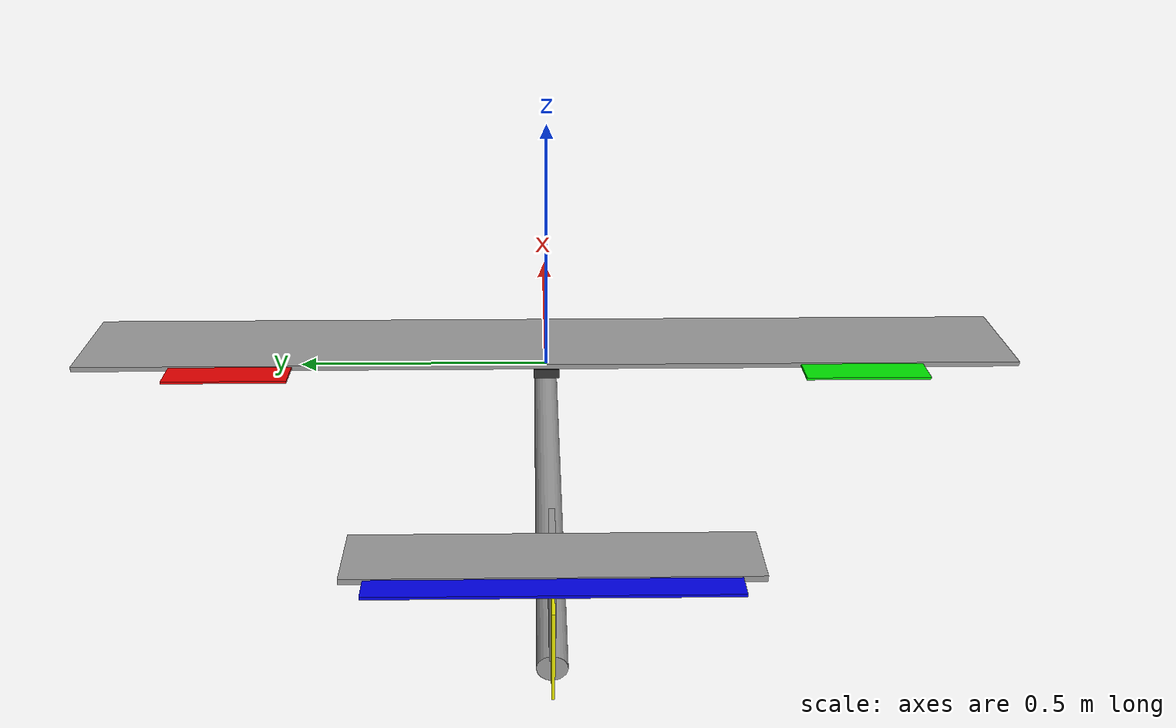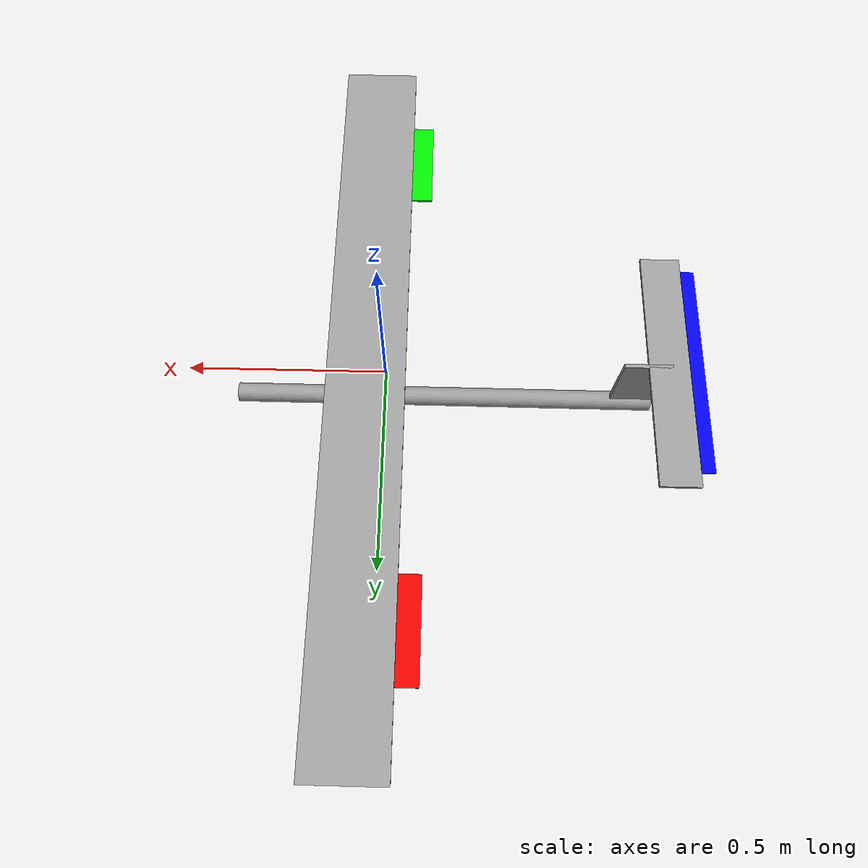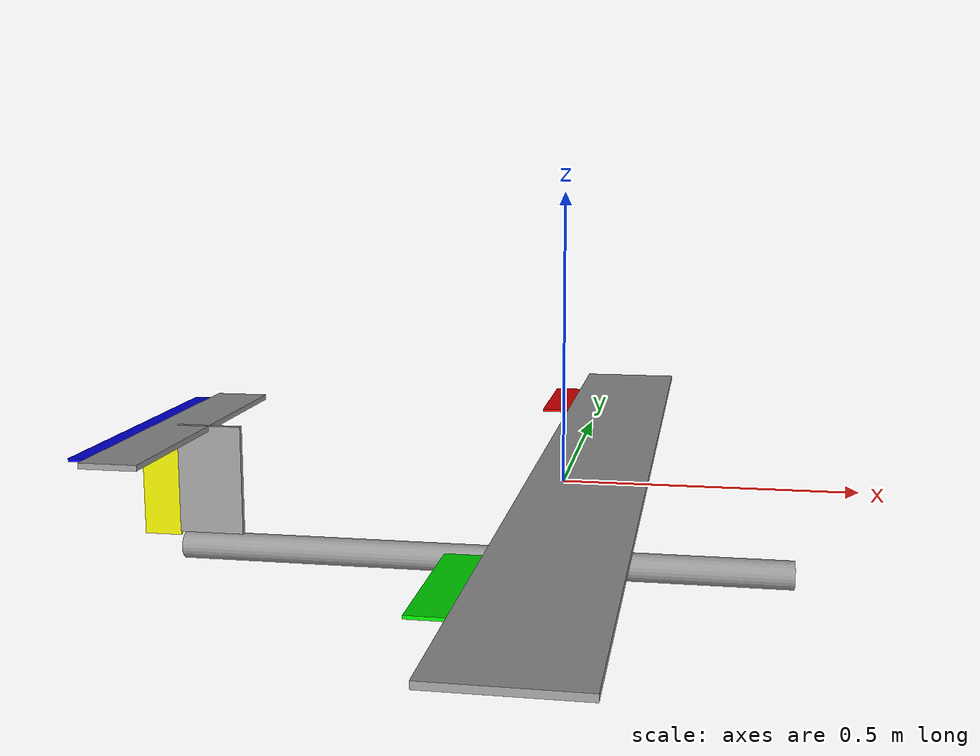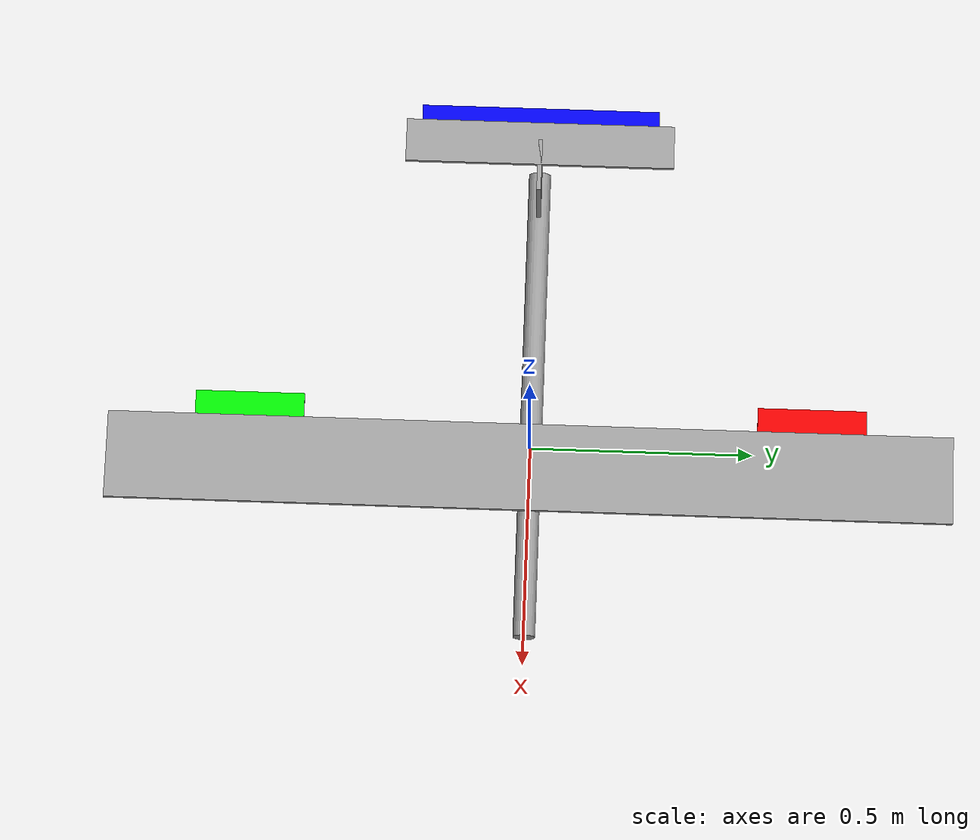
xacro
<?xml version="1.0" encoding="UTF-8"?>
<robot xmlns:xacro="http://www.ros.org/wiki/xacro"
  name="schematic_plane">

  <!--
       This file creates schematic model of plane.
       Sizes based on Skywalker 1900.
       -->

  <xacro:property name="kgcm_to_nm" value="0.0980665" />

  <!-- materials -->

  <material name="dark-grey">
    <color rgba=".2 .2 .2 1" />
  </material>
  <material name="grey">
    <color rgba=".6 .6 .6 1" />
  </material>
  <material name="red">
    <color rgba=".9 0 0 1" />
  </material>
  <material name="green">
    <color rgba="0 .9 0 1" />
  </material>
  <material name="blue">
    <color rgba="0 0 .9 1" />
  </material>
  <material name="yellow">
    <color rgba=".9 .9 0 1" />
  </material>

  <!-- base_link -->

  <link name="base_link">
    <!-- Robot base link: near CoG -->
  </link>

  <link name="fcu">
    <!-- FCU frame (mavros uses this link for most topics) -->
    <visual>
      <geometry>
        <!-- Pixhawk -->
        <box size=".085 .052 .02" />
      </geometry>
      <material name="dark-grey" />
    </visual>
  </link>
  <joint name="base_to_fcu" type="fixed">
    <parent link="base_link" />
    <child link="fcu" />
    <!-- FCU located under wing, on symmetry line,
         +5 cm X, -3 cm Y from base_link
         -->
    <origin xyz="0.05 0 -0.03" rpy="0 0 0" />
  </joint>

  <!-- fuselage (simple geometric figures) -->

  <link name="tail_link">
    <visual>
      <geometry>
        <cylinder length="1.10" radius=".025" />
      </geometry>
      <material name="grey" />
    </visual>
  </link>
  <joint name="base_to_tail" type="fixed">
    <parent link="base_link" />
    <child link="tail_link" />
    <origin xyz="${1.10/2 - .70} 0 -.15" rpy="0 ${pi/2} 0" />
  </joint>

  <link name="wing_link">
    <visual>
      <geometry>
        <box size=".20 1.9 .01" />
      </geometry>
      <material name="grey" />
    </visual>
  </link>
  <joint name="base_to_wing" type="fixed">
    <parent link="base_link" />
    <child link="wing_link" />
    <origin xyz=".05 0 .02" rpy="0 0 0" />
  </joint>

  <link name="tailplane_link">
    <visual>
      <geometry>
        <box size=".10 .61 .01" />
      </geometry>
      <material name="grey" />
    </visual>
  </link>
  <joint name="base_to_tailplane" type="fixed">
    <parent link="base_link" />
    <child link="tailplane_link" />
    <origin xyz="-0.70 0 .07" rpy="0 0 0" />
  </joint>

  <link name="fin_link">
    <visual>
      <geometry>
        <box size=".12 .01 .20" />
      </geometry>
      <material name="grey" />
    </visual>
  </link>
  <joint name="base_to_fin" type="fixed">
    <parent link="base_link" />
    <child link="fin_link" />
    <origin xyz="${-0.71 + .12/2} 0 ${-0.15/2 + .05}" rpy="0 0 0" />
  </joint>

  <!-- control surfaces -->

  <xacro:macro name="common_servo_limit">
      <!-- Lets say 30 deg, servo: 1.5 kg*cm (6 volt), 60 deg in 0.10 sec -->
      <limit lower="${radians(-30)}" upper="${radians(30)}" effort="${1.5 * kgcm_to_nm}" velocity="${radians(60. / 0.10)}" />
  </xacro:macro>

  <xacro:macro name="aileron" params="link *material *origin *mimic">
    <link name="${link}">
      <visual>
        <geometry>
          <box size=".055 .245 .005" />
        </geometry>
        <xacro:insert_block name="material" />
        <origin xyz="${-0.055/2} 0 0" rpy="0 0 0" />
      </visual>
    </link>

    <joint name="${link}" type="revolute">
      <parent link="base_link" />
      <child link="${link}" />
      <xacro:insert_block name="origin" />
      <axis xyz="0 1 0" />
      <xacro:common_servo_limit />
      <xacro:insert_block name="mimic" />
    </joint>
  </xacro:macro>

  <!-- conventional ailerons controlled by one axis -->
  <link name="aileron_link" />
  <joint name="aileron" type="revolute">
    <parent link="base_link" />
    <child link="aileron_link" />
    <xacro:common_servo_limit />
  </joint>

  <!-- aileron location: 51 cm Y to 6-cm side, -5 cm on X -->
  <xacro:aileron link="aileron_left">
    <material name="red" />
    <origin xyz="-0.05 ${.51 + .245/2} .02" rpy="0 0 0" />
    <mimic joint="aileron" multiplier="-1" />
  </xacro:aileron>
  <xacro:aileron link="aileron_right">
    <material name="green" />
    <origin xyz="-0.05 ${-(.51 + .245/2)} .02" rpy="0 0 0" />
    <mimic joint="aileron" multiplier="1" />
  </xacro:aileron>

  <!-- Elevator (T-tail) -->
  <link name="elevator_link">
    <visual>
      <geometry>
        <box size=".035 .54 .005" />
      </geometry>
      <material name="blue" />
      <origin xyz="${-0.035/2} 0 0" rpy="0 0 0" />
    </visual>
  </link>
  <joint name="elevator" type="revolute">
    <parent link="base_link" />
    <child link="elevator_link" />
    <origin xyz="-0.75 0 .07" rpy="0 0 0" />
    <axis xyz="0 1 0" />
    <xacro:common_servo_limit />
  </joint>

  <!-- Rudder (T-tail) -->
  <link name="rudder_link">
    <visual>
      <geometry>
        <box size=".07 .005 .165" />
      </geometry>
      <material name="yellow" />
      <origin xyz="${-0.07/2} 0 0" rpy="0 0 0" />
    </visual>
  </link>
  <joint name="rudder" type="revolute">
    <parent link="base_link" />
    <child link="rudder_link" />
    <origin xyz="-0.71 0 -0.05" rpy="0 0 0" />
    <axis xyz="0 0 1" />
    <xacro:common_servo_limit />
  </joint>

  <!-- vim: set ts=2 sw=2 et : -->
</robot>
